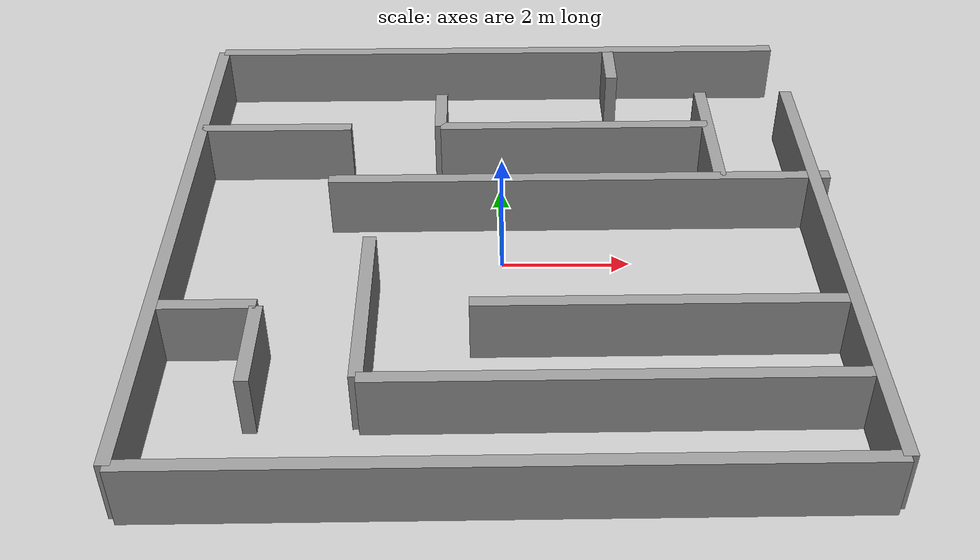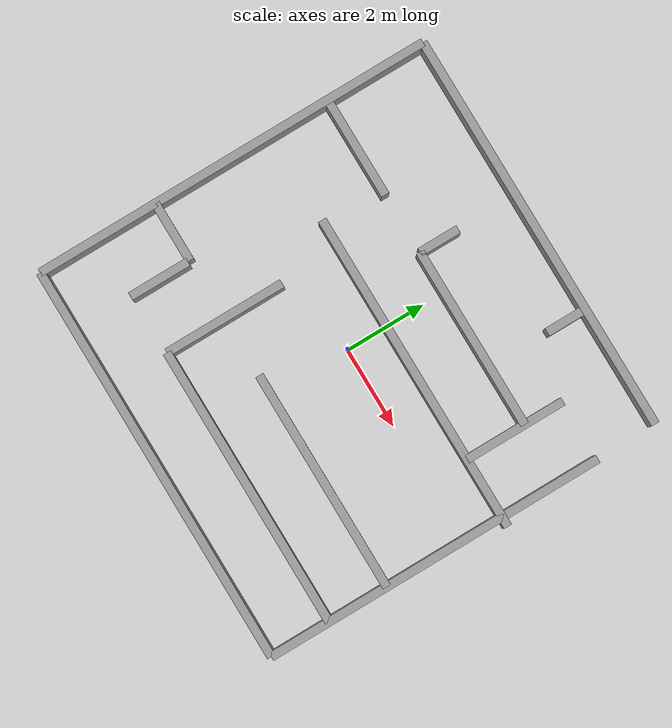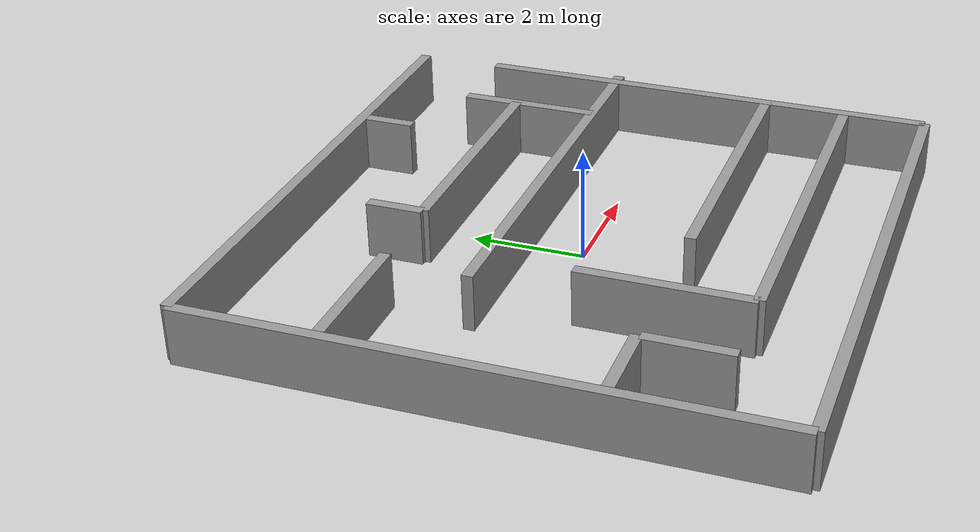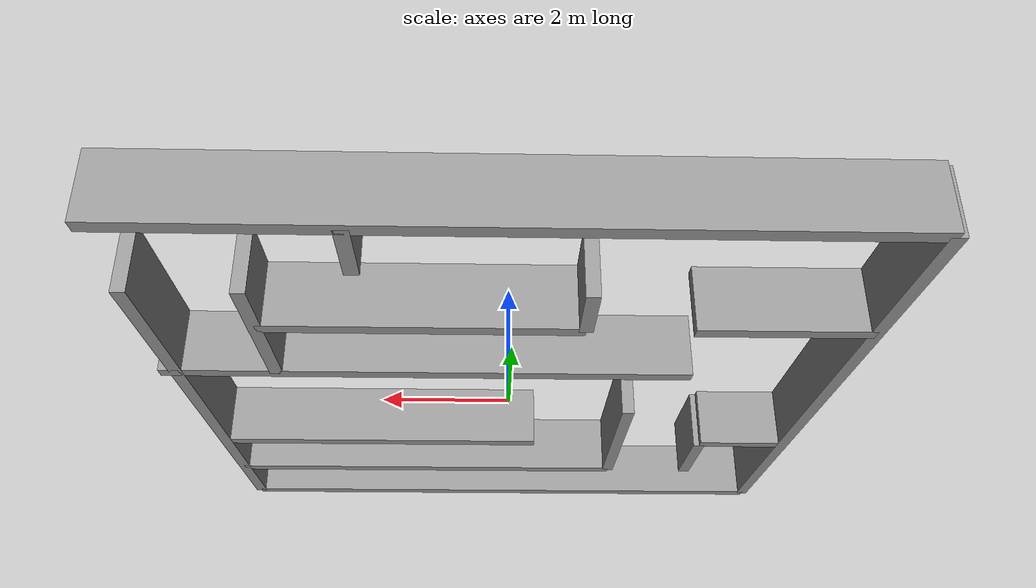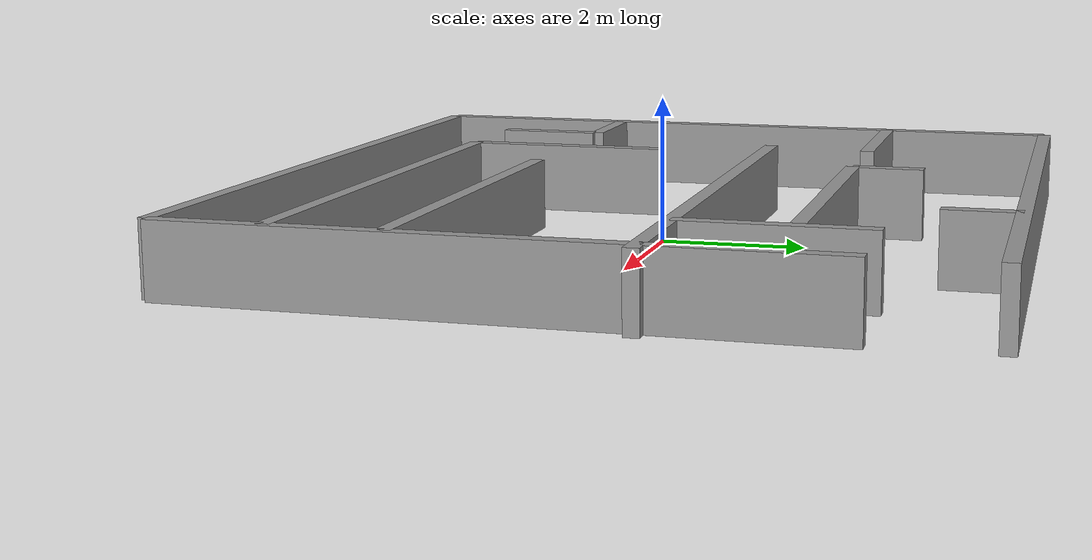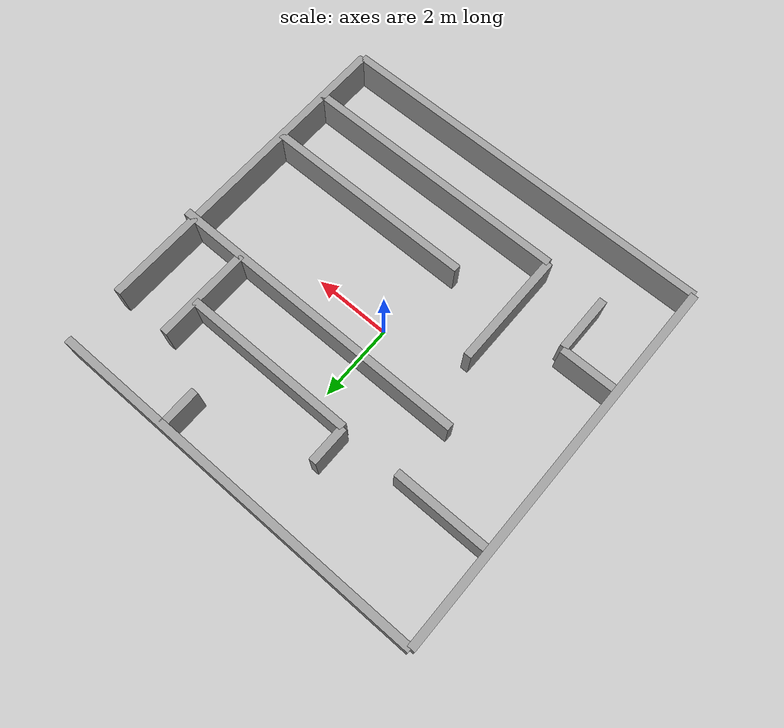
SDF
<?xml version='1.0'?>
<sdf version='1.4'>
  <model name='maze'>
    <static>1</static>
    <link name='Wall_0'>
      <pose>-5 -5 0 0 0 1.570796327</pose>
      <collision name='Wall_0_Collision'>
        <pose>5 0 0.5 0 0 0</pose>
        <geometry>
          <box>
            <size>10 0.2 1</size>
          </box>
        </geometry>
      </collision>
      <visual name='Wall_0_Visual'>
        <pose>5 0 0.5 0 0 0</pose>
        <geometry>
          <box>
            <size>10 0.2 1</size>
          </box>
        </geometry>
        <material>
          <script>
            <uri>file://media/materials/scripts/gazebo.material</uri>
            <name>Gazebo/Grey</name>
          </script>
        </material>
      </visual>
    </link>

    <link name='Wall_1'>
      <pose>-5 -5 0 0 0 0</pose>
      <collision name='Wall_1_Collision'>
        <pose>5 0 0.5 0 0 0</pose>
        <geometry>
          <box>
            <size>10 0.2 1</size>
          </box>
        </geometry>
      </collision>
      <visual name='Wall_1_Visual'>
        <pose>5 0 0.5 0 0 0</pose>
        <geometry>
          <box>
            <size>10 0.2 1</size>
          </box>
        </geometry>
        <material>
          <script>
            <uri>file://media/materials/scripts/gazebo.material</uri>
            <name>Gazebo/Grey</name>
          </script>
        </material>
      </visual>
    </link>

    <link name='Wall_2'>
      <pose>5 -5 0 0 0 1.570796327</pose>
      <collision name='Wall_2_Collision'>
        <pose>4.25 0 0.5 0 0 0</pose>
        <geometry>
          <box>
            <size>8.5 0.2 1</size>
          </box>
        </geometry>
      </collision>
      <visual name='Wall_2_Visual'>
        <pose>4.25 0 0.5 0 0 0</pose>
        <geometry>
          <box>
            <size>8.5 0.2 1</size>
          </box>
        </geometry>
        <material>
          <script>
            <uri>file://media/materials/scripts/gazebo.material</uri>
            <name>Gazebo/Grey</name>
          </script>
        </material>
      </visual>
    </link>

    <link name='Wall_3'>
      <pose>-5 5 0 0 0 0</pose>
      <collision name='Wall_3_Collision'>
        <pose>5 0 0.5 0 0 0</pose>
        <geometry>
          <box>
            <size>10 0.2 1</size>
          </box>
        </geometry>
      </collision>
      <visual name='Wall_3_Visual'>
        <pose>5 0 0.5 0 0 0</pose>
        <geometry>
          <box>
            <size>10 0.2 1</size>
          </box>
        </geometry>
        <material>
          <script>
            <uri>file://media/materials/scripts/gazebo.material</uri>
            <name>Gazebo/Grey</name>
          </script>
        </material>
      </visual>
    </link>

    <link name='Wall_4'>
      <pose>-2 -3.5 0 0 0 0</pose>
      <collision name='Wall_4_Collision'>
        <pose>3.5 0 0.5 0 0 0</pose>
        <geometry>
          <box>
            <size>7 0.2 1</size>
          </box>
        </geometry>
      </collision>
      <visual name='Wall_4_Visual'>
        <pose>3.5 0 0.5 0 0 0</pose>
        <geometry>
          <box>
            <size>7 0.2 1</size>
          </box>
        </geometry>
        <material>
          <script>
            <uri>file://media/materials/scripts/gazebo.material</uri>
            <name>Gazebo/Grey</name>
          </script>
        </material>
      </visual>
    </link>

    <link name='Wall_5'>
      <pose>-3.5 -3.5 0 0 0 1.570796327</pose>
      <collision name='Wall_5_Collision'>
        <pose>0.7 0 0.5 0 0 0</pose>
        <geometry>
          <box>
            <size>1.5 0.2 1</size>
          </box>
        </geometry>
      </collision>
      <visual name='Wall_5_Visual'>
        <pose>0.7 0 0.5 0 0 0</pose>
        <geometry>
          <box>
            <size>1.5 0.2 1</size>
          </box>
        </geometry>
        <material>
          <script>
            <uri>file://media/materials/scripts/gazebo.material</uri>
            <name>Gazebo/Grey</name>
          </script>
        </material>
      </visual>
    </link>

    <link name='Wall_6'>
      <pose>-0.5 -2 0 0 0 0</pose>
      <collision name='Wall_6_Collision'>
        <pose>2.75 0 0.5 0 0 0</pose>
        <geometry>
          <box>
            <size>5.5 0.2 1</size>
          </box>
        </geometry>
      </collision>
      <visual name='Wall_6_Visual'>
        <pose>2.75 0 0.5 0 0 0</pose>
        <geometry>
          <box>
            <size>5.5 0.2 1</size>
          </box>
        </geometry>
        <material>
          <script>
            <uri>file://media/materials/scripts/gazebo.material</uri>
            <name>Gazebo/Grey</name>
          </script>
        </material>
      </visual>
    </link>

    <link name='Wall_7'>
      <pose>-2 -3.5 0 0 0 1.570796327</pose>
      <collision name='Wall_7_Collision'>
        <pose>1.5 0 0.5 0 0 0</pose>
        <geometry>
          <box>
            <size>3 0.2 1</size>
          </box>
        </geometry>
      </collision>
      <visual name='Wall_7_Visual'>
        <pose>1.5 0 0.5 0 0 0</pose>
        <geometry>
          <box>
            <size>3 0.2 1</size>
          </box>
        </geometry>
        <material>
          <script>
            <uri>file://media/materials/scripts/gazebo.material</uri>
            <name>Gazebo/Grey</name>
          </script>
        </material>
      </visual>
    </link>

    <link name='Wall_8'>
      <pose>-3 1 0 0 0 0</pose>
      <collision name='Wall_8_Collision'>
        <pose>4.25 0 0.5 0 0 0</pose>
        <geometry>
          <box>
            <size>8 0.2 1</size>
          </box>
        </geometry>
      </collision>
      <visual name='Wall_8_Visual'>
        <pose>4.25 0 0.5 0 0 0</pose>
        <geometry>
          <box>
            <size>8 0.2 1</size>
          </box>
        </geometry>
        <material>
          <script>
            <uri>file://media/materials/scripts/gazebo.material</uri>
            <name>Gazebo/Grey</name>
          </script>
        </material>
      </visual>
    </link>

    <link name='Wall_9'>
      <pose>-1 2.5 0 0 0 0</pose>
      <collision name='Wall_9_Collision'>
        <pose>2.25 0 0.5 0 0 0</pose>
        <geometry>
          <box>
            <size>4.5 0.2 1</size>
          </box>
        </geometry>
      </collision>
      <visual name='Wall_9_Visual'>
        <pose>2.25 0 0.5 0 0 0</pose>
        <geometry>
          <box>
            <size>4.5 0.2 1</size>
          </box>
        </geometry>
        <material>
          <script>
            <uri>file://media/materials/scripts/gazebo.material</uri>
            <name>Gazebo/Grey</name>
          </script>
        </material>
      </visual>
    </link>

    <link name='Wall_10'>
      <pose>-1 2.5 0 0 0 1.570796327</pose>
      <collision name='Wall_10_Collision'>
        <pose>0.5 0 0.5 0 0 0</pose>
        <geometry>
          <box>
            <size>1 0.2 1</size>
          </box>
        </geometry>
      </collision>
      <visual name='Wall_10_Visual'>
        <pose>0.5 0 0.5 0 0 0</pose>
        <geometry>
          <box>
            <size>1 0.2 1</size>
          </box>
        </geometry>
        <material>
          <script>
            <uri>file://media/materials/scripts/gazebo.material</uri>
            <name>Gazebo/Grey</name>
          </script>
        </material>
      </visual>
    </link>

    <link name='Wall_11'>
      <pose>2 4 0 0 0 1.570796327</pose>
      <collision name='Wall_11_Collision'>
        <pose>0.5 0 0.5 0 0 0</pose>
        <geometry>
          <box>
            <size>1 0.2 1</size>
          </box>
        </geometry>
      </collision>
      <visual name='Wall_11_Visual'>
        <pose>0.5 0 0.5 0 0 0</pose>
        <geometry>
          <box>
            <size>1 0.2 1</size>
          </box>
        </geometry>
        <material>
          <script>
            <uri>file://media/materials/scripts/gazebo.material</uri>
            <name>Gazebo/Grey</name>
          </script>
        </material>
      </visual>
    </link>

    <link name='Wall_12'>
      <pose>3.5 1 0 0 0 1.570796327</pose>
      <collision name='Wall_12_Collision'>
        <pose>1.25 0 0.5 0 0 0</pose>
        <geometry>
          <box>
            <size>2.5 0.2 1</size>
          </box>
        </geometry>
      </collision>
      <visual name='Wall_12_Visual'>
        <pose>1.25 0 0.5 0 0 0</pose>
        <geometry>
          <box>
            <size>2.5 0.2 1</size>
          </box>
        </geometry>
        <material>
          <script>
            <uri>file://media/materials/scripts/gazebo.material</uri>
            <name>Gazebo/Grey</name>
          </script>
        </material>
      </visual>
    </link>

    <link name='Wall_13'>
      <pose>-5 2.5 0 0 0 0</pose>
      <collision name='Wall_13_Collision'>
        <pose>1.25 0 0.5 0 0 0</pose>
        <geometry>
          <box>
            <size>2.5 0.2 1</size>
          </box>
        </geometry>
      </collision>
      <visual name='Wall_13_Visual'>
        <pose>1.25 0 0.5 0 0 0</pose>
        <geometry>
          <box>
            <size>2.5 0.2 1</size>
          </box>
        </geometry>
        <material>
          <script>
            <uri>file://media/materials/scripts/gazebo.material</uri>
            <name>Gazebo/Grey</name>
          </script>
        </material>
      </visual>
    </link>

    <link name='Wall_14'>
      <pose>-5 -2 0 0 0 0</pose>
      <collision name='Wall_14_Collision'>
        <pose>0.75 0 0.5 0 0 0</pose>
        <geometry>
          <box>
            <size>1.5 0.2 1</size>
          </box>
        </geometry>
      </collision>
      <visual name='Wall_14_Visual'>
        <pose>0.75 0 0.5 0 0 0</pose>
        <geometry>
          <box>
            <size>1.5 0.2 1</size>
          </box>
        </geometry>
        <material>
          <script>
            <uri>file://media/materials/scripts/gazebo.material</uri>
            <name>Gazebo/Grey</name>
          </script>
        </material>
      </visual>
    </link>
  </model>
</sdf>
